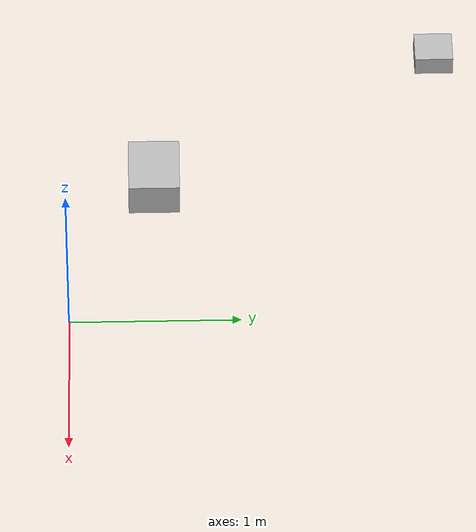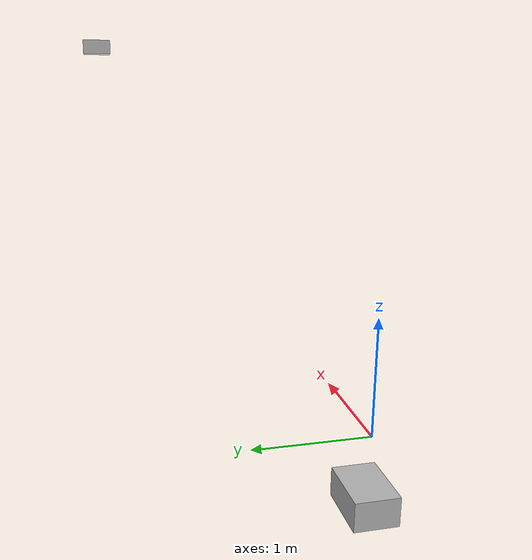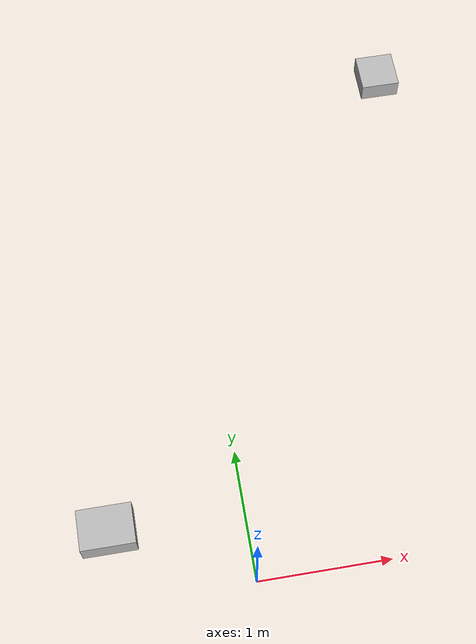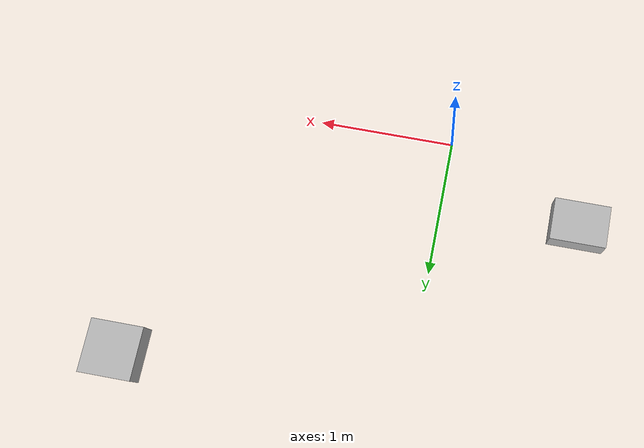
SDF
<?xml version="1.0"?>
<sdf version="1.6">
  <world name="default">
    <physics name="quality_test_physics" type="ode">
      <max_step_size>0.004</max_step_size>
      <real_time_factor>1.0</real_time_factor>
      <real_time_update_rate>250</real_time_update_rate>
    </physics>

    <gravity>0 0 -9.80665</gravity>

    <model name="uav1">
      <static>true</static>
      <pose>1.0 2.0 3.0 0 0 0</pose>
      <link name="base_link">
        <collision name="collision">
          <geometry>
            <box>
              <size>0.2 0.2 0.1</size>
            </box>
          </geometry>
        </collision>
        <visual name="visual">
          <geometry>
            <box>
              <size>0.2 0.2 0.1</size>
            </box>
          </geometry>
        </visual>
      </link>
    </model>

    <model name="manual_source">
      <static>true</static>
      <pose>-1.0 0.5 0.2 0 0 0</pose>
      <link name="base_link">
        <collision name="collision">
          <geometry>
            <box>
              <size>0.4 0.3 0.2</size>
            </box>
          </geometry>
        </collision>
        <visual name="visual">
          <geometry>
            <box>
              <size>0.4 0.3 0.2</size>
            </box>
          </geometry>
        </visual>
      </link>
    </model>
  </world>
</sdf>
